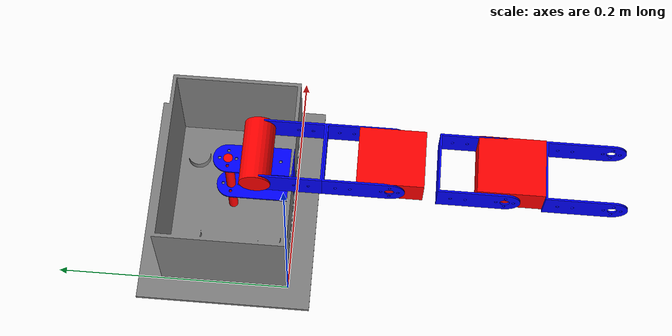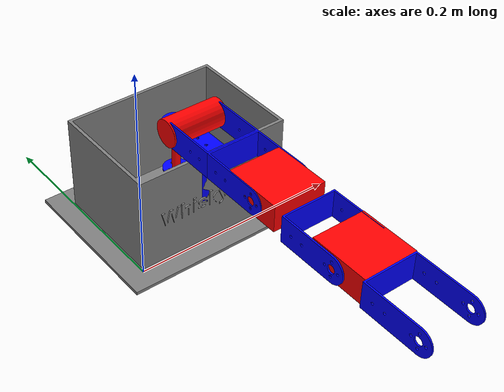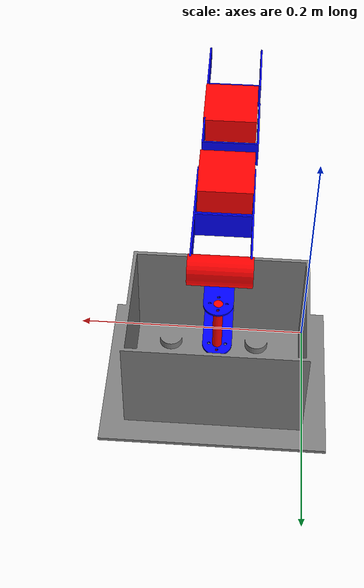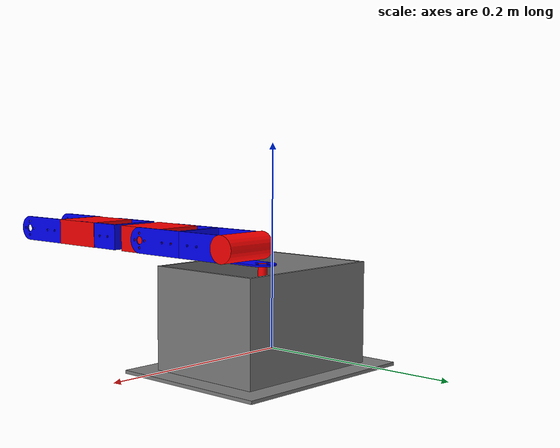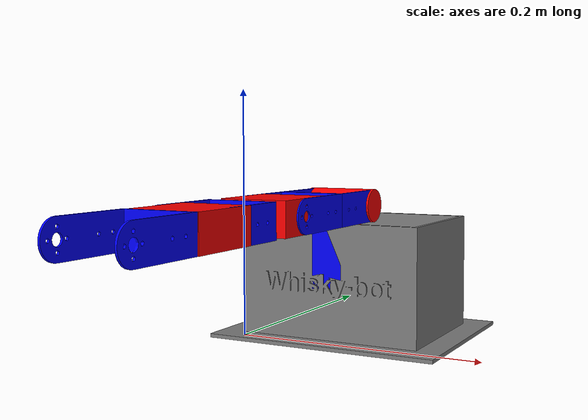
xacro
<?xml version="1.0"?>
<robot xmlns:xacro="http://www.ros.org/wiki/xacro" name="whisky_bot">
    <xacro:arg name="initial_positions_file" default="initial_positions.yaml" />

    <!-- Import whisky_bot urdf file -->
    <xacro:include filename="$(find whisky_bot_description)/urdf/whisky_bot.urdf.xacro" />

    <!-- Import control_xacro -->
    <xacro:include filename="whisky_bot.ros2_control.xacro" />

    <xacro:whisky_bot_ros2_control name="FakeSystem" initial_positions_file="$(arg initial_positions_file)"/>

</robot>

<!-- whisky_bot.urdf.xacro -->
<robot name="whisky_bot" xmlns:xacro="http://www.ros.org/wiki/xacro">

    <xacro:include filename="common_properties.xacro" />
    <xacro:include filename="arm.xacro" />
    <xacro:include filename="arm.ros2_control.xacro" />
    <xacro:include filename="whisky_bot.ros2_control.xacro"/>

</robot>

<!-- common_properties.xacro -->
<robot xmlns:xacro="http://www.ros.org/wiki/xacro">

    <xacro:property name="link_dim1" value="0.055" />
    <xacro:property name="link_dim2" value="0.025" />
    <xacro:property name="link_dim3" value="0.052" />
    <material name="grey">
        <color rgba="0.5 0.5 0.5 1"/>
    </material>
    <material name="red">
        <color rgba="1 0 0 1"/>
    </material>
    <material name="blue">
        <color rgba="0 0 1 1"/>
    </material>
</robot>

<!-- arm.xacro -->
<robot xmlns:xacro="http://www.ros.org/wiki/xacro">
    <!-- links -->
    <link name="base_link">
        <visual>
            <geometry>
                <mesh filename="package://whisky_bot_description/meshes/type0.stl" scale="0.001 0.001 0.001"/>
            </geometry>
            <origin xyz="0 0 0" rpy="0 0 0"/>
            <material name="grey" />
        </visual>
    </link>

    <link name="link1">
        <visual>
            <geometry>
                <cylinder length="0.095" radius="0.004"/>
            </geometry>
            <origin xyz="0 0 0" rpy="0 0 0"/>
            <material name="red" />
        </visual>
        <collision>
            <geometry>
                <cylinder length="0.095" radius="0.004"/>
            </geometry>
            <origin xyz="0 0 0" rpy="0 0 0"/>
        </collision>
    </link>

    <link name="link2">
        <visual>
            <geometry>
                <mesh filename="package://whisky_bot_description/meshes/type2.stl" scale="0.001 0.001 0.001"/>
            </geometry>
            <origin xyz="${-1*link_dim2/2} ${-1*link_dim1} 0" rpy="0 ${pi/2} 0"/>
            <material name="blue" />
        </visual>
        <collision>
            <geometry>
                <mesh filename="package://whisky_bot_description/meshes/type2.stl" scale="0.001 0.001 0.001"/>
            </geometry>
            <origin xyz="${-1*link_dim2/2} ${-1*link_dim1} 0" rpy="0 ${pi/2} 0"/>
        </collision>
    </link>

    <link name="motor2">
        <visual>
            <geometry>
                <cylinder length="${link_dim1}" radius="0.013"/>
            </geometry>
            <origin xyz="0 0 0" rpy="0 ${pi/2} 0"/>
            <material name="red" />
        </visual>
        <collision>
            <geometry>
                <cylinder length="${0.8*link_dim1}" radius="0.013"/>
            </geometry>
            <origin xyz="0 0 0" rpy="0 ${pi/2} 0"/>
        </collision>
    </link>

    <link name="link3">
        <visual>
            <geometry>
                <mesh filename="package://whisky_bot_description/meshes/type2.stl" scale="0.001 0.001 0.001"/>
            </geometry>
            <origin xyz="${-1*link_dim3/2} ${-1*link_dim1} ${-1*link_dim2/2}" rpy="0 0 0"/>
            <material name="blue" />
        </visual>
        <collision>
            <geometry>
                <mesh filename="package://whisky_bot_description/meshes/type2.stl" scale="0.001 0.001 0.001"/>
            </geometry>
            <origin xyz="${-1*link_dim3/2} ${-1*link_dim1} ${-1*link_dim2/2}" rpy="0 0 0"/>
        </collision>
    </link>

    <link name="link4">
        <visual>
            <geometry>
                <mesh filename="package://whisky_bot_description/meshes/type2.stl" scale="0.001 0.001 0.001"/>
            </geometry>
            <origin xyz="${-1*link_dim3/2} ${link_dim1} ${link_dim2/2}" rpy="${pi} 0 0"/>
            <material name="blue" />
        </visual>
        <collision>
            <geometry>
                <mesh filename="package://whisky_bot_description/meshes/type2.stl" scale="0.001 0.001 0.001"/>
            </geometry>
            <origin xyz="${-1*link_dim3/2} ${link_dim1} ${link_dim2/2}" rpy="${pi} 0 0"/>
        </collision>
    </link>

    <link name="motor3">
        <visual>
            <geometry>
                <box size="${link_dim1} 0.050 ${link_dim2}"/>
            </geometry>
            <origin xyz="0 0 0" rpy="0 0 ${pi/2}"/>
            <material name="red" />
        </visual>
        <collision>
            <geometry>
                <box size="${link_dim1} ${0.8*0.050} ${link_dim2}"/>
            </geometry>
            <origin xyz="0 0 0" rpy="0 0 ${pi/2}"/>
        </collision>
    </link>

    <link name="link5">
        <visual>
            <geometry>
                <mesh filename="package://whisky_bot_description/meshes/type2.stl" scale="0.001 0.001 0.001"/>
            </geometry>
            <origin xyz="${-1*link_dim1/2} ${1.3*link_dim1} ${link_dim2/2}" rpy="${pi} 0 0"/>
            <material name="blue" />
        </visual>
        <collision>
            <geometry>
                <mesh filename="package://whisky_bot_description/meshes/type2.stl" scale="0.001 0.001 0.001"/>
            </geometry>
            <origin xyz="${-1*link_dim1/2} ${1.3*link_dim1} ${link_dim2/2}" rpy="${pi} 0 0"/>
        </collision>
    </link>

    <link name="motor4">
        <visual>
            <geometry>
                <box size="${link_dim1} 0.050 ${link_dim2}"/>
            </geometry>
            <origin xyz="0 0 0" rpy="0 0 ${pi/2}"/>
            <material name="red" />
        </visual>
        <collision>
            <geometry>
                <box size="${link_dim1} ${0.8*0.050} ${link_dim2}"/>
            </geometry>
            <origin xyz="0 0 0" rpy="0 0 ${pi/2}"/>
        </collision>
    </link>

    <link name="link6">
        <visual>
            <geometry>
                <mesh filename="package://whisky_bot_description/meshes/type2.stl" scale="0.001 0.001 0.001"/>
            </geometry>
            <origin xyz="${-1*link_dim1/2} ${-1*link_dim1/2} ${link_dim2/2}" rpy="${pi} 0 0"/>
            <material name="blue" />
        </visual>
        <collision>
            <geometry>
                <mesh filename="package://whisky_bot_description/meshes/type2.stl" scale="0.001 0.001 0.001"/>
            </geometry>
            <origin xyz="${-1*link_dim1/2} ${-1*link_dim1/2} ${link_dim2/2}" rpy="${pi} 0 0"/>
        </collision>
    </link>

    <!-- joints -->
    <joint name="joint1" type="fixed">
        <parent link="base_link"/>
        <child link="link1"/>
        <origin xyz="0.075 ${link_dim1} 0.0475" rpy="0 0 0"/>
        <axis xyz="0 0 0"/>
    </joint>

    <joint name="joint2" type="revolute">
        <parent link="link1"/>
        <child link="link2"/>
        <origin xyz="0 0 ${0.095/2}" rpy="0 0 0"/>
        <axis xyz="0 0 1"/>
        <limit lower="0" upper="${pi}" effort="1000.0" velocity="1.0"/>
    </joint>

    <joint name="joint3" type="fixed">
        <parent link="link2"/>
        <child link="motor2"/>
        <origin xyz="0 ${-1*link_dim2} ${link_dim2/2}" rpy="0 0 0"/>
        <axis xyz="0 0 0"/>
    </joint>

    <joint name="joint4" type="revolute">
        <parent link="motor2"/>
        <child link="link3"/>
        <origin xyz="0 0 0" rpy="0 0 0"/>
        <axis xyz="1 0 0"/>
        <limit lower="${-pi}" upper="0" effort="1000.0" velocity="1.0"/>
    </joint>

    <joint name="joint5" type="fixed">
        <parent link="link3"/>
        <child link="link4"/>
        <origin xyz="0 ${-2*link_dim1} 0" rpy="0 0 0"/>
    </joint>

    <joint name="joint6" type="revolute">
        <parent link="link4"/>
        <child link="motor3"/>
        <origin xyz="0 0 0" rpy="0 0 0"/>
        <axis xyz="1 0 0"/>
        <limit lower="-0.8" upper="${pi/2}" effort="1000.0" velocity="1.0"/>
    </joint>

    <joint name="joint7" type="fixed">
        <parent link="motor3"/>
        <child link="link5"/>
        <origin xyz="0 ${-2*link_dim1} 0" rpy="0 0 0"/>
    </joint>

    <joint name="joint8" type="revolute">
        <parent link="link5"/>
        <child link="motor4"/>
        <origin xyz="0 ${link_dim2/2} 0" rpy="0 0 0"/>
        <axis xyz="1 0 0"/>
        <limit lower="${-pi/2}" upper="0.8" effort="1000.0" velocity="1.0"/>
    </joint>

    <joint name="joint9" type="revolute">
        <parent link="motor4"/>
        <child link="link6"/>
        <origin xyz="0 0 0" rpy="0 0 0"/>
        <axis xyz="0 1 0"/>
        <limit lower="${-pi/2}" upper="0.8" effort="1000.0" velocity="1.0"/>
    </joint>

</robot>
